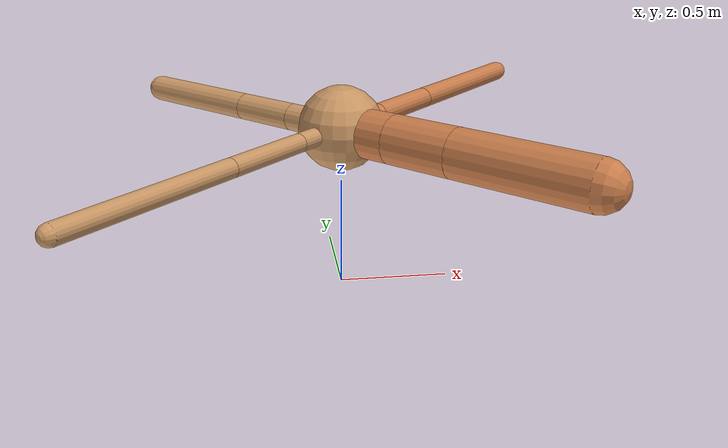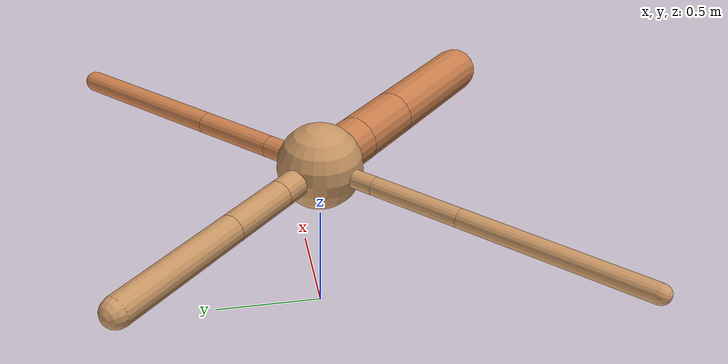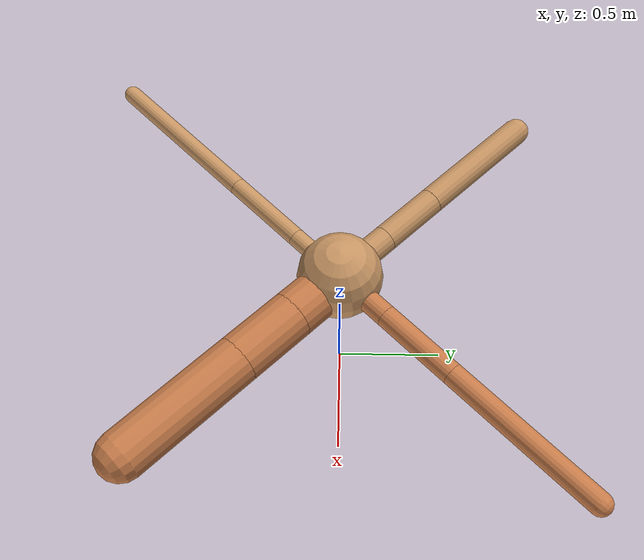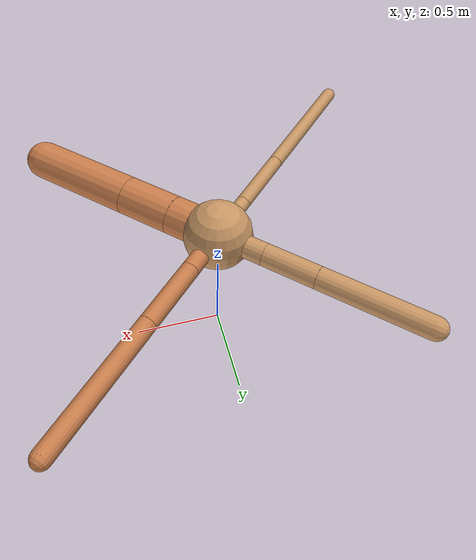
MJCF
<?xml version="1.0" ?>
<mujoco model="ant">

	<compiler angle="degree" coordinate="local" inertiafromgeom="true"/>

	<option integrator="RK4" timestep="0.01"/>

	<custom>

		<numeric data="0.0 0.0 0.55 1.0 0.0 0.0 0.0 0.0 1.0 0.0 -1.0 0.0 -1.0 0.0 1.0" name="init_qpos"/>

	</custom>

	<default>

		<joint armature="1" damping="1" limited="true"/>

		<geom conaffinity="0" condim="3" density="5.0" friction="1.5 0.1 0.1" margin="0.01" rgba="0.8 0.6 0.4 1"/>

	</default>

	<worldbody>

		<body name="torso" pos="0 0 0.75">

			<geom name="torso_geom" pos="0 0 0" size="0.1909010704806323" type="sphere"/>

			<!--joint armature="0" damping="0" limited="false" margin="0.01" name="root" pos="0 0 0" type="free"/-->

			<body name="front_left_leg" pos="0 0 0">

				<geom fromto="0 0 0 0.2 0.2 0" name="aux_1_geom" size="0.050011253989882355" type="capsule" rgba=".8 .5 .3 1"/>

				<body name="aux_1" pos="0.2 0.2 0">

					<joint axis="0 0 1" name="hip_1" pos="0.0 0.0 0.0" range="-40 40" type="hinge"/>

					<geom fromto="0 0 0 0.26950681842519103 0.26950681842519103 0" name="left_leg_geom" size="0.050011253989882355" type="capsule" rgba=".8 .5 .3 1"/>

					<body pos="0.26950681842519103 0.26950681842519103 0" name="front_left_foot">

						<joint axis="-1 1 0" name="ankle_1" pos="0.0 0.0 0.0" range="30 100" type="hinge"/>

						<geom fromto="0 0 0 0.5390136368503821 0.5390136368503821 0" name="left_ankle_geom" size="0.050011253989882355" type="capsule" rgba=".8 .5 .3 1"/>

					</body>

				</body>

			</body>

			<body name="front_right_leg" pos="0 0 0">

				<geom fromto="0 0 0 -0.2 0.2 0" name="aux_2_geom" size="0.06237482275467491" type="capsule"/>

				<body name="aux_2" pos="-0.2 0.2 0">

					<joint axis="0 0 1" name="hip_2" pos="0.0 0.0 0.0" range="-40 40" type="hinge"/>

					<geom fromto="0 0 0 -0.21343439076022733 0.21343439076022733 0" name="right_leg_geom" size="0.06237482275467491" type="capsule"/>

					<body pos="-0.21343439076022733 0.21343439076022733 0" name="front_right_foot">

						<joint axis="1 1 0" name="ankle_2" pos="0.0 0.0 0.0" range="-100 -30" type="hinge"/>

						<geom fromto="0 0 0 -0.42686878152045465 0.42686878152045465 0" name="right_ankle_geom" size="0.06237482275467491" type="capsule"/>

					</body>

				</body>

			</body>

			<body name="left_back_leg" pos="0 0 0">

				<geom fromto="0 0 0 -0.2 -0.2 0" name="aux_3_geom" size="0.04151562047632046" type="capsule"/>

				<body name="aux_3" pos="-0.2 -0.2 0">

					<joint axis="0 0 1" name="hip_3" pos="0.0 0.0 0.0" range="-40 40" type="hinge"/>

					<geom fromto="0 0 0 -0.28329985100204874 -0.28329985100204874 0" name="back_leg_geom" size="0.04151562047632046" type="capsule"/>

					<body pos="-0.28329985100204874 -0.28329985100204874 0" name="left_back_foot">

						<joint axis="-1 1 0" name="ankle_3" pos="0.0 0.0 0.0" range="-100 -30" type="hinge"/>

						<geom fromto="0 0 0 -0.5665997020040975 -0.5665997020040975 0" name="third_ankle_geom" size="0.04151562047632046" type="capsule"/>

					</body>

				</body>

			</body>

			<body name="right_back_leg" pos="0 0 0">

				<geom fromto="0 0 0 0.2 -0.2 0" name="aux_4_geom" size="0.10961333539989575" type="capsule" rgba=".8 .5 .3 1"/>

				<body name="aux_4" pos="0.2 -0.2 0">

					<joint axis="0 0 1" name="hip_4" pos="0.0 0.0 0.0" range="-40 40" type="hinge"/>

					<geom fromto="0 0 0 0.21556861603830624 -0.21556861603830624 0" name="rightback_leg_geom" size="0.10961333539989575" type="capsule" rgba=".8 .5 .3 1"/>

					<body pos="0.21556861603830624 -0.21556861603830624 0" name="right_back_foot">

						<joint axis="1 1 0" name="ankle_4" pos="0.0 0.0 0.0" range="30 100" type="hinge"/>

						<geom fromto="0 0 0 0.4311372320766125 -0.4311372320766125 0" name="fourth_ankle_geom" size="0.10961333539989575" type="capsule" rgba=".8 .5 .3 1"/>

					</body>

				</body>

			</body>

		</body>

	</worldbody>

	<actuator>

		<motor ctrllimited="true" ctrlrange="-1.0 1.0" joint="hip_4" gear="150"/>

		<motor ctrllimited="true" ctrlrange="-1.0 1.0" joint="ankle_4" gear="150"/>

		<motor ctrllimited="true" ctrlrange="-1.0 1.0" joint="hip_1" gear="150"/>

		<motor ctrllimited="true" ctrlrange="-1.0 1.0" joint="ankle_1" gear="150"/>

		<motor ctrllimited="true" ctrlrange="-1.0 1.0" joint="hip_2" gear="150"/>

		<motor ctrllimited="true" ctrlrange="-1.0 1.0" joint="ankle_2" gear="150"/>

		<motor ctrllimited="true" ctrlrange="-1.0 1.0" joint="hip_3" gear="150"/>

		<motor ctrllimited="true" ctrlrange="-1.0 1.0" joint="ankle_3" gear="150"/>

	</actuator>

</mujoco>
